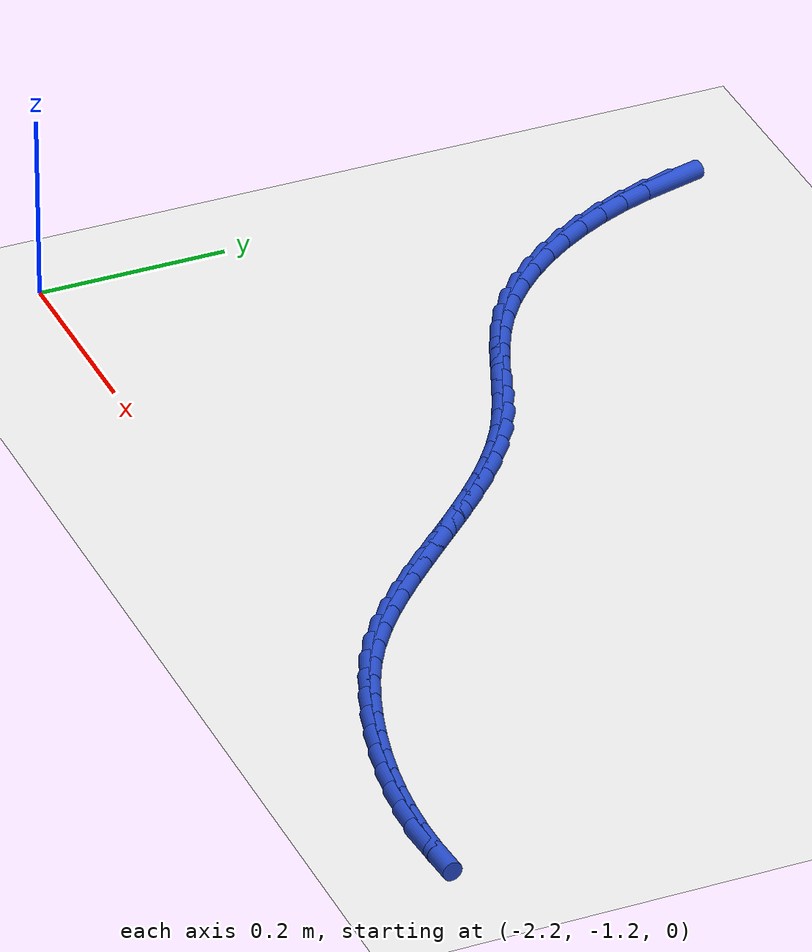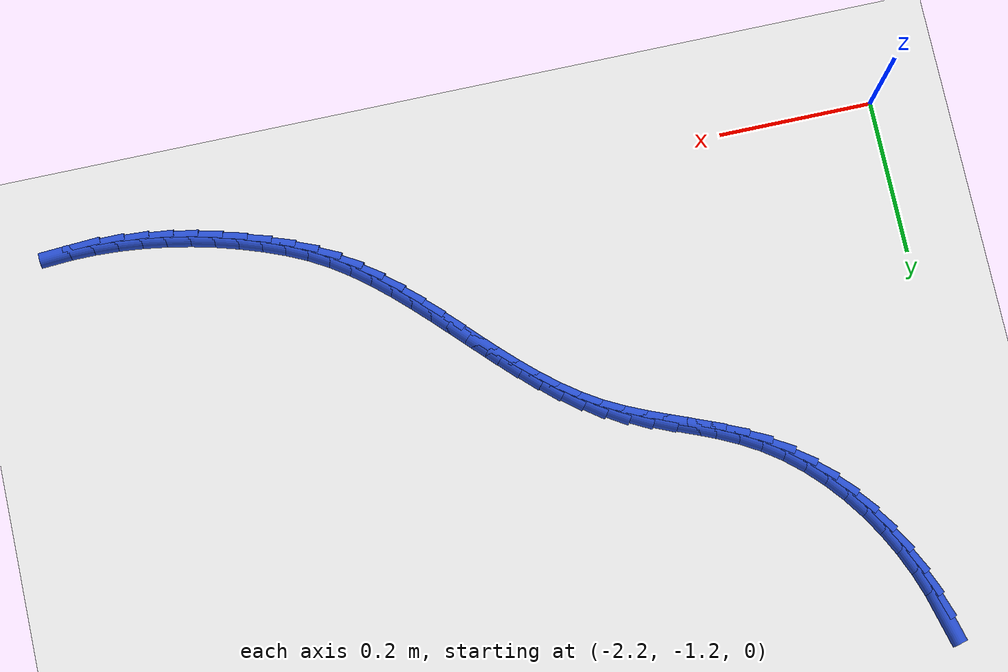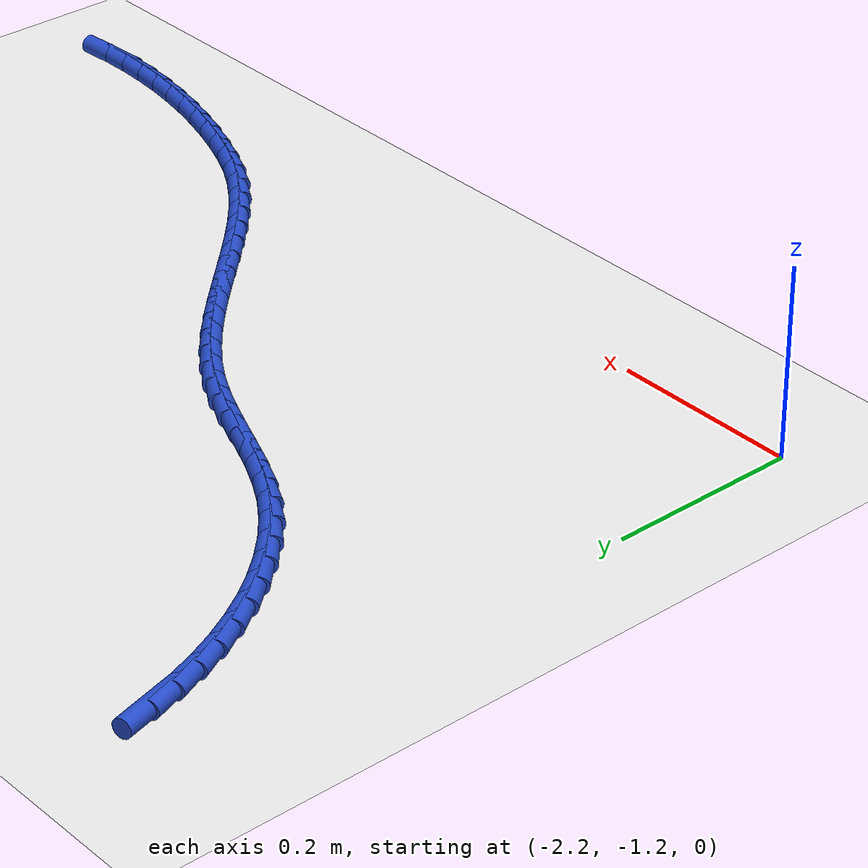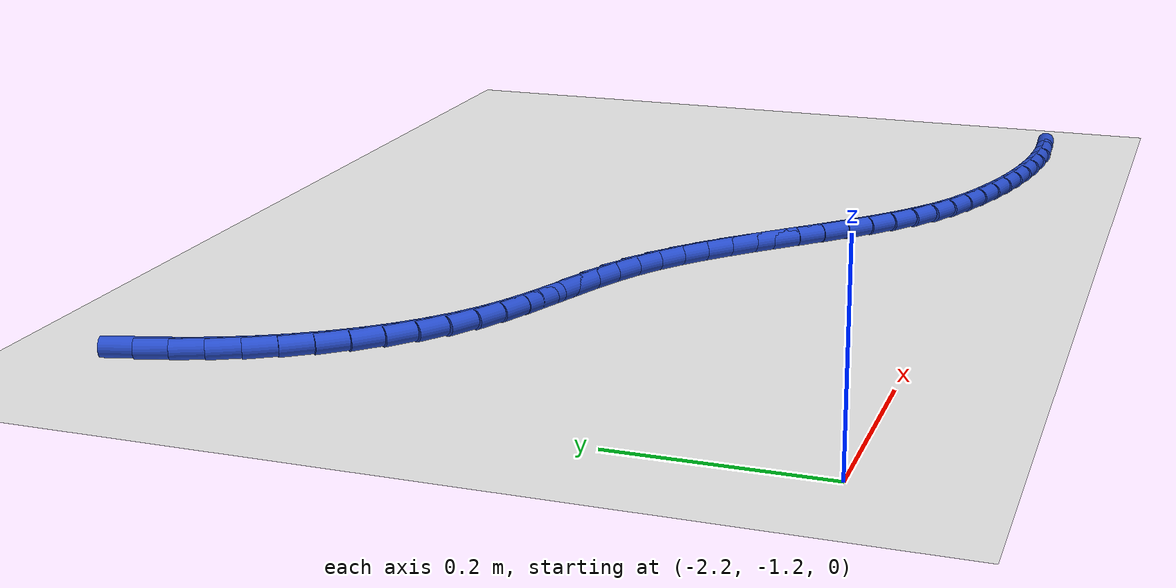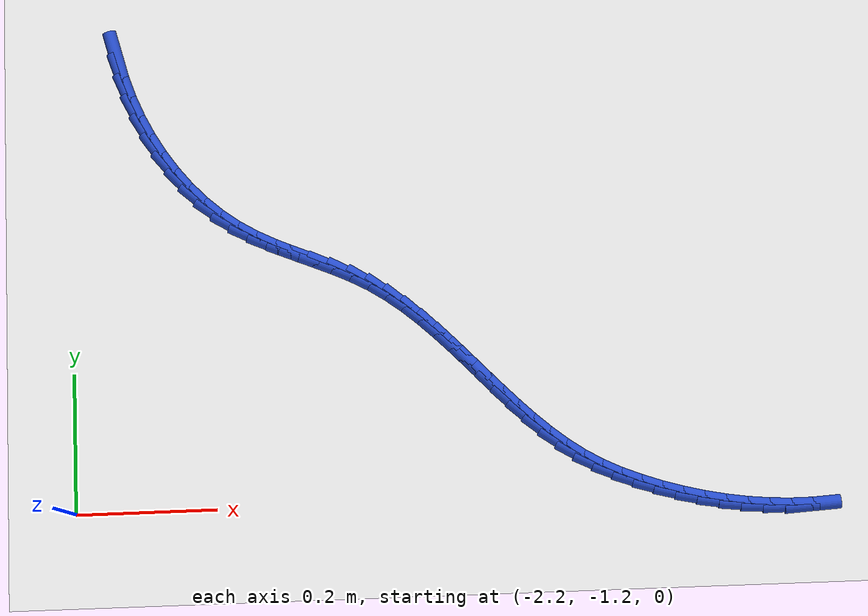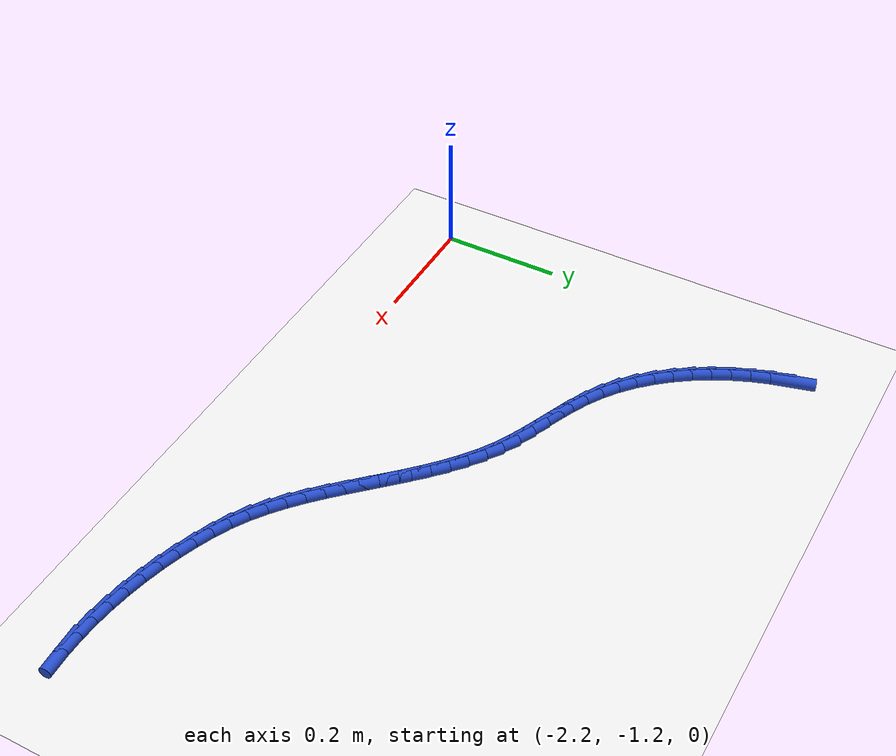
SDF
<sdf version="1.6">
 <world name="default">
  <model name="ground_plane">
   <static>1</static>
   <link name="link">
    <collision name="collision">
     <geometry><plane><normal>0 0 1</normal><size>100 100</size></plane></geometry>
     <surface><friction><ode><mu>100</mu><mu2>50</mu2></ode></friction></surface>
    </collision>
    <visual name="visual">
     <cast_shadows>0</cast_shadows>
     <geometry><plane><normal>0 0 1</normal><size>100 100</size></plane></geometry>
     <material>
      <script><uri>file://media/materials/scripts/gazebo.material</uri><name>Gazebo/WhiteGlow</name></script>
     </material>
    </visual>
   </link>
  </model>
  <model name="line">
   <link name="link_148">
    <pose>-2.132272489164304 -0.5404946614195644 0.01 0 1.57 -1.3115005428419384</pose>
    <collision name="collision">
     <geometry><cylinder><radius>0.01</radius><length>0.08</length></cylinder></geometry>
    </collision>
    <visual name="visual">
     <material>
      <script><name>Gazebo/Blue</name><uri>file://media/materials/scripts/gazebo.material</uri></script>
     </material>
     <geometry><cylinder><radius>0.01</radius><length>0.08</length></cylinder></geometry>
    </visual>
   </link>
   <link name="link_149">
    <pose>-2.1241539981335023 -0.5710995678449108 0.01 0 1.57 -1.239375784316892</pose>
    <collision name="collision">
     <geometry><cylinder><radius>0.01</radius><length>0.08</length></cylinder></geometry>
    </collision>
    <visual name="visual">
     <material>
      <script><name>Gazebo/Blue</name><uri>file://media/materials/scripts/gazebo.material</uri></script>
     </material>
     <geometry><cylinder><radius>0.01</radius><length>0.08</length></cylinder></geometry>
    </visual>
   </link>
   <link name="link_150">
    <pose>-2.113789467235165 -0.6012191376466212 0.01 0 1.57 -1.1684657354645311</pose>
    <collision name="collision">
     <geometry><cylinder><radius>0.01</radius><length>0.08</length></cylinder></geometry>
    </collision>
    <visual name="visual">
     <material>
      <script><name>Gazebo/Blue</name><uri>file://media/materials/scripts/gazebo.material</uri></script>
     </material>
     <geometry><cylinder><radius>0.01</radius><length>0.08</length></cylinder></geometry>
    </visual>
   </link>
   <link name="link_151">
    <pose>-2.1012788938955205 -0.6306182103428846 0.01 0 1.57 -1.097773442819494</pose>
    <collision name="collision">
     <geometry><cylinder><radius>0.01</radius><length>0.08</length></cylinder></geometry>
    </collision>
    <visual name="visual">
     <material>
      <script><name>Gazebo/Blue</name><uri>file://media/materials/scripts/gazebo.material</uri></script>
     </material>
     <geometry><cylinder><radius>0.01</radius><length>0.08</length></cylinder></geometry>
    </visual>
   </link>
   <link name="link_152">
    <pose>-2.0867222755407937 -0.6590616254518894 0.01 0 1.57 -1.0263098058298878</pose>
    <collision name="collision">
     <geometry><cylinder><radius>0.01</radius><length>0.08</length></cylinder></geometry>
    </collision>
    <visual name="visual">
     <material>
      <script><name>Gazebo/Blue</name><uri>file://media/materials/scripts/gazebo.material</uri></script>
     </material>
     <geometry><cylinder><radius>0.01</radius><length>0.08</length></cylinder></geometry>
    </visual>
   </link>
   <link name="link_153">
    <pose>-2.07021960959721 -0.6863142224918243 0.01 0 1.57 -0.9530862986432052</pose>
    <collision name="collision">
     <geometry><cylinder><radius>0.01</radius><length>0.08</length></cylinder></geometry>
    </collision>
    <visual name="visual">
     <material>
      <script><name>Gazebo/Blue</name><uri>file://media/materials/scripts/gazebo.material</uri></script>
     </material>
     <geometry><cylinder><radius>0.01</radius><length>0.08</length></cylinder></geometry>
    </visual>
   </link>
   <link name="link_154">
    <pose>-2.051870893490994 -0.7121408409808776 0.01 0 1.57 -0.8771123040187713</pose>
    <collision name="collision">
     <geometry><cylinder><radius>0.01</radius><length>0.08</length></cylinder></geometry>
    </collision>
    <visual name="visual">
     <material>
      <script><name>Gazebo/Blue</name><uri>file://media/materials/scripts/gazebo.material</uri></script>
     </material>
     <geometry><cylinder><radius>0.01</radius><length>0.08</length></cylinder></geometry>
    </visual>
   </link>
   <link name="link_155">
    <pose>-2.031776124648373 -0.736306320437238 0.01 0 1.57 -0.7974029431831763</pose>
    <collision name="collision">
     <geometry><cylinder><radius>0.01</radius><length>0.08</length></cylinder></geometry>
    </collision>
    <visual name="visual">
     <material>
      <script><name>Gazebo/Blue</name><uri>file://media/materials/scripts/gazebo.material</uri></script>
     </material>
     <geometry><cylinder><radius>0.01</radius><length>0.08</length></cylinder></geometry>
    </visual>
   </link>
   <link name="link_156">
    <pose>-2.0100353004955718 -0.7585755003790939 0.01 0 1.57 -0.7130046668735744</pose>
    <collision name="collision">
     <geometry><cylinder><radius>0.01</radius><length>0.08</length></cylinder></geometry>
    </collision>
    <visual name="visual">
     <material>
      <script><name>Gazebo/Blue</name><uri>file://media/materials/scripts/gazebo.material</uri></script>
     </material>
     <geometry><cylinder><radius>0.01</radius><length>0.08</length></cylinder></geometry>
    </visual>
   </link>
   <link name="link_157">
    <pose>-1.986748418458815 -0.778713220324634 0.01 0 1.57 -0.6230472752605869</pose>
    <collision name="collision">
     <geometry><cylinder><radius>0.01</radius><length>0.08</length></cylinder></geometry>
    </collision>
    <visual name="visual">
     <material>
      <script><name>Gazebo/Blue</name><uri>file://media/materials/scripts/gazebo.material</uri></script>
     </material>
     <geometry><cylinder><radius>0.01</radius><length>0.08</length></cylinder></geometry>
    </visual>
   </link>
   <link name="link_158">
    <pose>-1.962015475964329 -0.7964843197920467 0.01 0 1.57 -0.529573119109755</pose>
    <collision name="collision">
     <geometry><cylinder><radius>0.01</radius><length>0.08</length></cylinder></geometry>
    </collision>
    <visual name="visual">
     <material>
      <script><name>Gazebo/Blue</name><uri>file://media/materials/scripts/gazebo.material</uri></script>
     </material>
     <geometry><cylinder><radius>0.01</radius><length>0.08</length></cylinder></geometry>
    </visual>
   </link>
   <link name="link_159">
    <pose>-1.9359615859391541 -0.8117348008923262 0.01 0 1.57 -0.4532774690928509</pose>
    <collision name="collision">
     <geometry><cylinder><radius>0.01</radius><length>0.08</length></cylinder></geometry>
    </collision>
    <visual name="visual">
     <material>
      <script><name>Gazebo/Blue</name><uri>file://media/materials/scripts/gazebo.material</uri></script>
     </material>
     <geometry><cylinder><radius>0.01</radius><length>0.08</length></cylinder></geometry>
    </visual>
   </link>
   <link name="link_160">
    <pose>-1.9088994488852775 -0.8249168688169056 0.01 0 1.57 -0.4042898057150751</pose>
    <collision name="collision">
     <geometry><cylinder><radius>0.01</radius><length>0.08</length></cylinder></geometry>
    </collision>
    <visual name="visual">
     <material>
      <script><name>Gazebo/Blue</name><uri>file://media/materials/scripts/gazebo.material</uri></script>
     </material>
     <geometry><cylinder><radius>0.01</radius><length>0.08</length></cylinder></geometry>
    </visual>
   </link>
   <link name="link_161">
    <pose>-1.8812266190478213 -0.8367569398849561 0.01 0 1.57 -0.3827184577921758</pose>
    <collision name="collision">
     <geometry><cylinder><radius>0.01</radius><length>0.08</length></cylinder></geometry>
    </collision>
    <visual name="visual">
     <material>
      <script><name>Gazebo/Blue</name><uri>file://media/materials/scripts/gazebo.material</uri></script>
     </material>
     <geometry><cylinder><radius>0.01</radius><length>0.08</length></cylinder></geometry>
    </visual>
   </link>
   <link name="link_162">
    <pose>-1.8533410678491402 -0.8479827785546319 0.01 0 1.57 -0.38854845081552153</pose>
    <collision name="collision">
     <geometry><cylinder><radius>0.01</radius><length>0.08</length></cylinder></geometry>
    </collision>
    <visual name="visual">
     <material>
      <script><name>Gazebo/Blue</name><uri>file://media/materials/scripts/gazebo.material</uri></script>
     </material>
     <geometry><cylinder><radius>0.01</radius><length>0.08</length></cylinder></geometry>
    </visual>
   </link>
   <link name="link_163">
    <pose>-1.8256407667115868 -0.8593221492840861 0.01 0 1.57 -0.4221784755843126</pose>
    <collision name="collision">
     <geometry><cylinder><radius>0.01</radius><length>0.08</length></cylinder></geometry>
    </collision>
    <visual name="visual">
     <material>
      <script><name>Gazebo/Blue</name><uri>file://media/materials/scripts/gazebo.material</uri></script>
     </material>
     <geometry><cylinder><radius>0.01</radius><length>0.08</length></cylinder></geometry>
    </visual>
   </link>
   <link name="link_164">
    <pose>-1.7985236870575148 -0.8715028165314718 0.01 0 1.57 -0.4842713378843912</pose>
    <collision name="collision">
     <geometry><cylinder><radius>0.01</radius><length>0.08</length></cylinder></geometry>
    </collision>
    <visual name="visual">
     <material>
      <script><name>Gazebo/Blue</name><uri>file://media/materials/scripts/gazebo.material</uri></script>
     </material>
     <geometry><cylinder><radius>0.01</radius><length>0.08</length></cylinder></geometry>
    </visual>
   </link>
   <link name="link_165">
    <pose>-1.7723874111928641 -0.8852518567104344 0.01 0 1.57 -0.5646190564460799</pose>
    <collision name="collision">
     <geometry><cylinder><radius>0.01</radius><length>0.08</length></cylinder></geometry>
    </collision>
    <visual name="visual">
     <material>
      <script><name>Gazebo/Blue</name><uri>file://media/materials/scripts/gazebo.material</uri></script>
     </material>
     <geometry><cylinder><radius>0.01</radius><length>0.08</length></cylinder></geometry>
    </visual>
   </link>
   <link name="link_166">
    <pose>-1.7474784696231633 -0.9010292529997229 0.01 0 1.57 -0.6363223917806388</pose>
    <collision name="collision">
     <geometry><cylinder><radius>0.01</radius><length>0.08</length></cylinder></geometry>
    </collision>
    <visual name="visual">
     <material>
      <script><name>Gazebo/Blue</name><uri>file://media/materials/scripts/gazebo.material</uri></script>
     </material>
     <geometry><cylinder><radius>0.01</radius><length>0.08</length></cylinder></geometry>
    </visual>
   </link>
   <link name="link_167">
    <pose>-1.7236641088257307 -0.9186243299181858 0.01 0 1.57 -0.6948902054836781</pose>
    <collision name="collision">
     <geometry><cylinder><radius>0.01</radius><length>0.08</length></cylinder></geometry>
    </collision>
    <visual name="visual">
     <material>
      <script><name>Gazebo/Blue</name><uri>file://media/materials/scripts/gazebo.material</uri></script>
     </material>
     <geometry><cylinder><radius>0.01</radius><length>0.08</length></cylinder></geometry>
    </visual>
   </link>
   <link name="link_168">
    <pose>-1.700752992946288 -0.9377228253712633 0.01 0 1.57 -0.7404368101047805</pose>
    <collision name="collision">
     <geometry><cylinder><radius>0.01</radius><length>0.08</length></cylinder></geometry>
    </collision>
    <visual name="visual">
     <material>
      <script><name>Gazebo/Blue</name><uri>file://media/materials/scripts/gazebo.material</uri></script>
     </material>
     <geometry><cylinder><radius>0.01</radius><length>0.08</length></cylinder></geometry>
    </visual>
   </link>
   <link name="link_169">
    <pose>-1.6785537861305582 -0.9580104772643966 0.01 0 1.57 -0.7733522205207013</pose>
    <collision name="collision">
     <geometry><cylinder><radius>0.01</radius><length>0.08</length></cylinder></geometry>
    </collision>
    <visual name="visual">
     <material>
      <script><name>Gazebo/Blue</name><uri>file://media/materials/scripts/gazebo.material</uri></script>
     </material>
     <geometry><cylinder><radius>0.01</radius><length>0.08</length></cylinder></geometry>
    </visual>
   </link>
   <link name="link_170">
    <pose>-1.6568751525242624 -0.9791730235030254 0.01 0 1.57 -0.7940759092319546</pose>
    <collision name="collision">
     <geometry><cylinder><radius>0.01</radius><length>0.08</length></cylinder></geometry>
    </collision>
    <visual name="visual">
     <material>
      <script><name>Gazebo/Blue</name><uri>file://media/materials/scripts/gazebo.material</uri></script>
     </material>
     <geometry><cylinder><radius>0.01</radius><length>0.08</length></cylinder></geometry>
    </visual>
   </link>
   <link name="link_171">
    <pose>-1.6355257562731238 -1.0008962019925907 0.01 0 1.57 -0.8029516076039505</pose>
    <collision name="collision">
     <geometry><cylinder><radius>0.01</radius><length>0.08</length></cylinder></geometry>
    </collision>
    <visual name="visual">
     <material>
      <script><name>Gazebo/Blue</name><uri>file://media/materials/scripts/gazebo.material</uri></script>
     </material>
     <geometry><cylinder><radius>0.01</radius><length>0.08</length></cylinder></geometry>
    </visual>
   </link>
   <link name="link_172">
    <pose>-1.6143142615228636 -1.0228657506385328 0.01 0 1.57 -0.8001475678077193</pose>
    <collision name="collision">
     <geometry><cylinder><radius>0.01</radius><length>0.08</length></cylinder></geometry>
    </collision>
    <visual name="visual">
     <material>
      <script><name>Gazebo/Blue</name><uri>file://media/materials/scripts/gazebo.material</uri></script>
     </material>
     <geometry><cylinder><radius>0.01</radius><length>0.08</length></cylinder></geometry>
    </visual>
   </link>
   <link name="link_173">
    <pose>-1.5930493324192045 -1.0447674073462923 0.01 0 1.57 -0.7856259938721027</pose>
    <collision name="collision">
     <geometry><cylinder><radius>0.01</radius><length>0.08</length></cylinder></geometry>
    </collision>
    <visual name="visual">
     <material>
      <script><name>Gazebo/Blue</name><uri>file://media/materials/scripts/gazebo.material</uri></script>
     </material>
     <geometry><cylinder><radius>0.01</radius><length>0.08</length></cylinder></geometry>
    </visual>
   </link>
   <link name="link_174">
    <pose>-1.5715396331078688 -1.0662869100213102 0.01 0 1.57 -0.7591533627728412</pose>
    <collision name="collision">
     <geometry><cylinder><radius>0.01</radius><length>0.08</length></cylinder></geometry>
    </collision>
    <visual name="visual">
     <material>
      <script><name>Gazebo/Blue</name><uri>file://media/materials/scripts/gazebo.material</uri></script>
     </material>
     <geometry><cylinder><radius>0.01</radius><length>0.08</length></cylinder></geometry>
    </visual>
   </link>
   <link name="link_175">
    <pose>-1.5495938277345782 -1.0871099965690258 0.01 0 1.57 -0.7203538849879844</pose>
    <collision name="collision">
     <geometry><cylinder><radius>0.01</radius><length>0.08</length></cylinder></geometry>
    </collision>
    <visual name="visual">
     <material>
      <script><name>Gazebo/Blue</name><uri>file://media/materials/scripts/gazebo.material</uri></script>
     </material>
     <geometry><cylinder><radius>0.01</radius><length>0.08</length></cylinder></geometry>
    </visual>
   </link>
   <link name="link_176">
    <pose>-1.527020580445056 -1.1069224048948805 0.01 0 1.57 -0.668818010025565</pose>
    <collision name="collision">
     <geometry><cylinder><radius>0.01</radius><length>0.08</length></cylinder></geometry>
    </collision>
    <visual name="visual">
     <material>
      <script><name>Gazebo/Blue</name><uri>file://media/materials/scripts/gazebo.material</uri></script>
     </material>
     <geometry><cylinder><radius>0.01</radius><length>0.08</length></cylinder></geometry>
    </visual>
   </link>
   <link name="link_177">
    <pose>-1.5036285553850226 -1.125409872904315 0.01 0 1.57 -0.6042824695579986</pose>
    <collision name="collision">
     <geometry><cylinder><radius>0.01</radius><length>0.08</length></cylinder></geometry>
    </collision>
    <visual name="visual">
     <material>
      <script><name>Gazebo/Blue</name><uri>file://media/materials/scripts/gazebo.material</uri></script>
     </material>
     <geometry><cylinder><radius>0.01</radius><length>0.08</length></cylinder></geometry>
    </visual>
   </link>
   <link name="link_178">
    <pose>-1.479226416700201 -1.1422581385027692 0.01 0 1.57 -0.5268908083511267</pose>
    <collision name="collision">
     <geometry><cylinder><radius>0.01</radius><length>0.08</length></cylinder></geometry>
    </collision>
    <visual name="visual">
     <material>
      <script><name>Gazebo/Blue</name><uri>file://media/materials/scripts/gazebo.material</uri></script>
     </material>
     <geometry><cylinder><radius>0.01</radius><length>0.08</length></cylinder></geometry>
    </visual>
   </link>
   <link name="link_179">
    <pose>-1.4536228425170237 -1.1571529671064995 0.01 0 1.57 -0.44420812275750904</pose>
    <collision name="collision">
     <geometry><cylinder><radius>0.01</radius><length>0.08</length></cylinder></geometry>
    </collision>
    <visual name="visual">
     <material>
      <script><name>Gazebo/Blue</name><uri>file://media/materials/scripts/gazebo.material</uri></script>
     </material>
     <geometry><cylinder><radius>0.01</radius><length>0.08</length></cylinder></geometry>
    </visual>
   </link>
   <link name="link_180">
    <pose>-1.4267170494056691 -1.169958282912629 0.01 0 1.57 -0.37987285078562133</pose>
    <collision name="collision">
     <geometry><cylinder><radius>0.01</radius><length>0.08</length></cylinder></geometry>
    </collision>
    <visual name="visual">
     <material>
      <script><name>Gazebo/Blue</name><uri>file://media/materials/scripts/gazebo.material</uri></script>
     </material>
     <geometry><cylinder><radius>0.01</radius><length>0.08</length></cylinder></geometry>
    </visual>
   </link>
   <link name="link_181">
    <pose>-1.3987138441480984 -1.181138990935987 0.01 0 1.57 -0.33260568062866136</pose>
    <collision name="collision">
     <geometry><cylinder><radius>0.01</radius><length>0.08</length></cylinder></geometry>
    </collision>
    <visual name="visual">
     <material>
      <script><name>Gazebo/Blue</name><uri>file://media/materials/scripts/gazebo.material</uri></script>
     </material>
     <geometry><cylinder><radius>0.01</radius><length>0.08</length></cylinder></geometry>
    </visual>
   </link>
   <link name="link_182">
    <pose>-1.3698484092615084 -1.1911102339297948 0.01 0 1.57 -0.2876684887064092</pose>
    <collision name="collision">
     <geometry><cylinder><radius>0.01</radius><length>0.08</length></cylinder></geometry>
    </collision>
    <visual name="visual">
     <material>
      <script><name>Gazebo/Blue</name><uri>file://media/materials/scripts/gazebo.material</uri></script>
     </material>
     <geometry><cylinder><radius>0.01</radius><length>0.08</length></cylinder></geometry>
    </visual>
   </link>
   <link name="link_183">
    <pose>-1.3402736281972205 -1.1998606845369837 0.01 0 1.57 -0.2424598431168772</pose>
    <collision name="collision">
     <geometry><cylinder><radius>0.01</radius><length>0.08</length></cylinder></geometry>
    </collision>
    <visual name="visual">
     <material>
      <script><name>Gazebo/Blue</name><uri>file://media/materials/scripts/gazebo.material</uri></script>
     </material>
     <geometry><cylinder><radius>0.01</radius><length>0.08</length></cylinder></geometry>
    </visual>
   </link>
   <link name="link_184">
    <pose>-1.3101302082147237 -1.2073159189143063 0.01 0 1.57 -0.19649347126854094</pose>
    <collision name="collision">
     <geometry><cylinder><radius>0.01</radius><length>0.08</length></cylinder></geometry>
    </collision>
    <visual name="visual">
     <material>
      <script><name>Gazebo/Blue</name><uri>file://media/materials/scripts/gazebo.material</uri></script>
     </material>
     <geometry><cylinder><radius>0.01</radius><length>0.08</length></cylinder></geometry>
    </visual>
   </link>
   <link name="link_185">
    <pose>-1.2795588565735083 -1.2134015132185128 0.01 0 1.57 -0.14929381576341655</pose>
    <collision name="collision">
     <geometry><cylinder><radius>0.01</radius><length>0.08</length></cylinder></geometry>
    </collision>
    <visual name="visual">
     <material>
      <script><name>Gazebo/Blue</name><uri>file://media/materials/scripts/gazebo.material</uri></script>
     </material>
     <geometry><cylinder><radius>0.01</radius><length>0.08</length></cylinder></geometry>
    </visual>
   </link>
   <link name="link_186">
    <pose>-1.2487002805330651 -1.2180430436063565 0.01 0 1.57 -0.10038816650456335</pose>
    <collision name="collision">
     <geometry><cylinder><radius>0.01</radius><length>0.08</length></cylinder></geometry>
    </collision>
    <visual name="visual">
     <material>
      <script><name>Gazebo/Blue</name><uri>file://media/materials/scripts/gazebo.material</uri></script>
     </material>
     <geometry><cylinder><radius>0.01</radius><length>0.08</length></cylinder></geometry>
    </visual>
   </link>
   <link name="link_187">
    <pose>-1.2176951873528825 -1.2211660862345868 0.01 0 1.57 -0.049301727155082284</pose>
    <collision name="collision">
     <geometry><cylinder><radius>0.01</radius><length>0.08</length></cylinder></geometry>
    </collision>
    <visual name="visual">
     <material>
      <script><name>Gazebo/Blue</name><uri>file://media/materials/scripts/gazebo.material</uri></script>
     </material>
     <geometry><cylinder><radius>0.01</radius><length>0.08</length></cylinder></geometry>
    </visual>
   </link>
   <link name="link_188">
    <pose>-1.1866842842924517 -1.222696217259957 0.01 0 1.57 0.004443693885020957</pose>
    <collision name="collision">
     <geometry><cylinder><radius>0.01</radius><length>0.08</length></cylinder></geometry>
    </collision>
    <visual name="visual">
     <material>
      <script><name>Gazebo/Blue</name><uri>file://media/materials/scripts/gazebo.material</uri></script>
     </material>
     <geometry><cylinder><radius>0.01</radius><length>0.08</length></cylinder></geometry>
    </visual>
   </link>
   <link name="link_189">
    <pose>-1.155808278611262 -1.2225590128392179 0.01 0 1.57 0.061326241450337625</pose>
    <collision name="collision">
     <geometry><cylinder><radius>0.01</radius><length>0.08</length></cylinder></geometry>
    </collision>
    <visual name="visual">
     <material>
      <script><name>Gazebo/Blue</name><uri>file://media/materials/scripts/gazebo.material</uri></script>
     </material>
     <geometry><cylinder><radius>0.01</radius><length>0.08</length></cylinder></geometry>
    </visual>
   </link>
  </model>
 </world>
</sdf>
